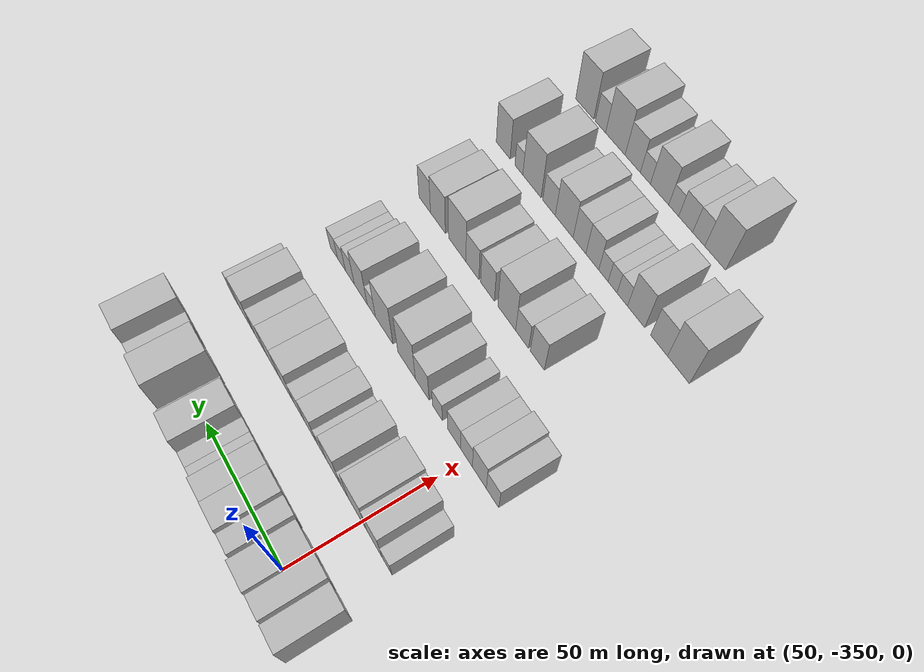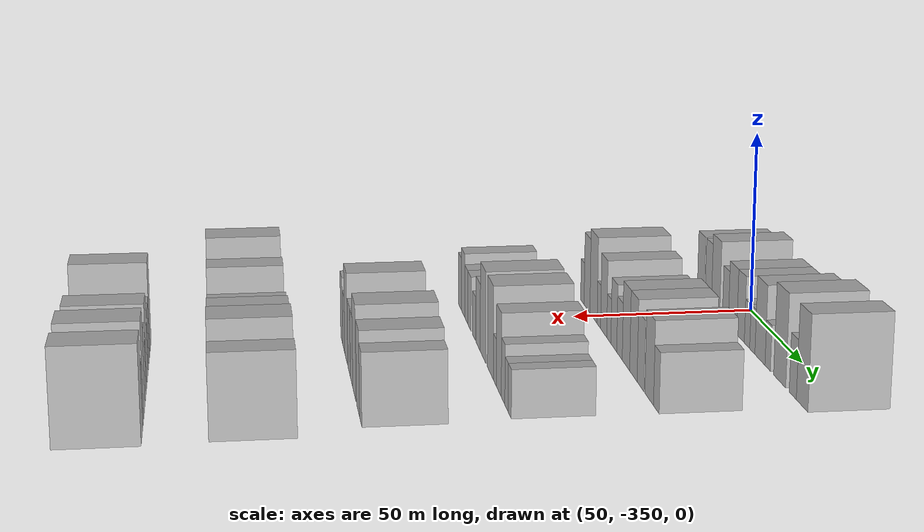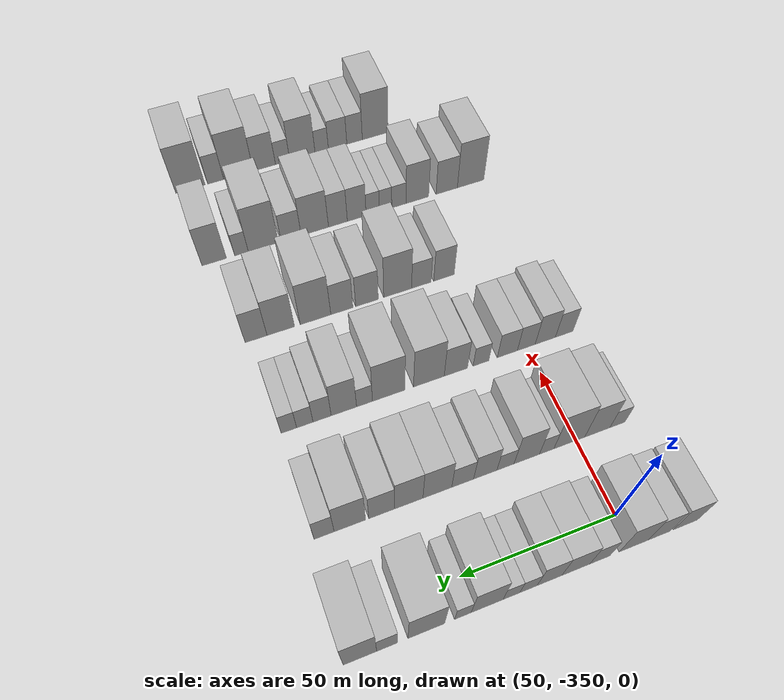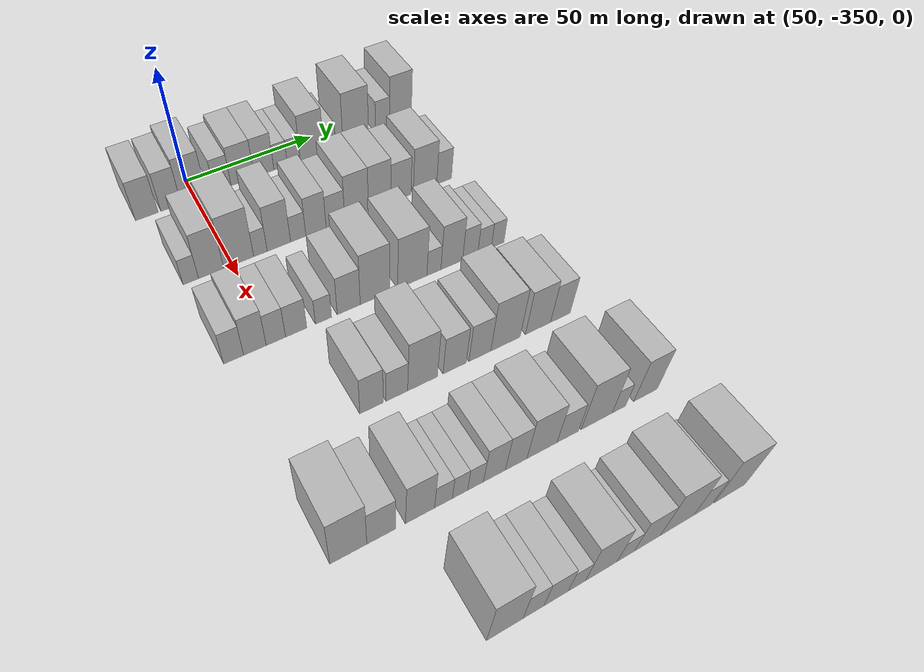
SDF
<sdf version="1.6">
 <world name="default">
  <model name="building_25">
   <static>1</static>
   <pose>50.0000 -367.8274 0 0.000000 0.000000 0.000000</pose>
   <link name="link">
    <pose>0 0 9.00 0 0 0</pose>
    <collision name="collision"><geometry><box><size>20.0000 8.2068 18.0000</size></box></geometry></collision>
    <visual name="visual">
     <cast_shadows>0</cast_shadows>
     <geometry><box><size>20.0000 8.2068 18.0000</size></box></geometry>
     <material>
      <script>
       <uri>model://HANNAS_wall/materials/scripts</uri>
       <uri>model://HANNAS_wall/materials/textures</uri>
       <name>vrc/HANNAS_wall</name>
      </script>
     </material>
    </visual>
   </link>
  </model>
  <model name="building_26">
   <static>1</static>
   <pose>50.0000 -358.9862 0 0.000000 0.000000 0.000000</pose>
   <link name="link">
    <pose>0 0 9.00 0 0 0</pose>
    <collision name="collision"><geometry><box><size>20.0000 7.4757 18.0000</size></box></geometry></collision>
    <visual name="visual">
     <cast_shadows>0</cast_shadows>
     <geometry><box><size>20.0000 7.4757 18.0000</size></box></geometry>
     <material>
      <script>
       <uri>model://HANNAS_wall/materials/scripts</uri>
       <uri>model://HANNAS_wall/materials/textures</uri>
       <name>vrc/HANNAS_wall</name>
      </script>
     </material>
    </visual>
   </link>
  </model>
  <model name="building_27">
   <static>1</static>
   <pose>50.0000 -350.5286 0 0.000000 0.000000 0.000000</pose>
   <link name="link">
    <pose>0 0 10.50 0 0 0</pose>
    <collision name="collision"><geometry><box><size>20.0000 9.4395 21.0000</size></box></geometry></collision>
    <visual name="visual">
     <cast_shadows>0</cast_shadows>
     <geometry><box><size>20.0000 9.4395 21.0000</size></box></geometry>
     <material>
      <script>
       <uri>model://HANNAS_wall/materials/scripts</uri>
       <uri>model://HANNAS_wall/materials/textures</uri>
       <name>vrc/HANNAS_wall</name>
      </script>
     </material>
    </visual>
   </link>
  </model>
  <model name="building_28">
   <static>1</static>
   <pose>50.0000 -339.5602 0 0.000000 0.000000 0.000000</pose>
   <link name="link">
    <pose>0 0 7.50 0 0 0</pose>
    <collision name="collision"><geometry><box><size>20.0000 6.4973 15.0000</size></box></geometry></collision>
    <visual name="visual">
     <cast_shadows>0</cast_shadows>
     <geometry><box><size>20.0000 6.4973 15.0000</size></box></geometry>
     <material>
      <script>
       <uri>model://HANNAS_wall/materials/scripts</uri>
       <uri>model://HANNAS_wall/materials/textures</uri>
       <name>vrc/HANNAS_wall</name>
      </script>
     </material>
    </visual>
   </link>
  </model>
  <model name="building_29">
   <static>1</static>
   <pose>50.0000 -331.8136 0 0.000000 0.000000 0.000000</pose>
   <link name="link">
    <pose>0 0 9.00 0 0 0</pose>
    <collision name="collision"><geometry><box><size>20.0000 8.9958 18.0000</size></box></geometry></collision>
    <visual name="visual">
     <cast_shadows>0</cast_shadows>
     <geometry><box><size>20.0000 8.9958 18.0000</size></box></geometry>
     <material>
      <script>
       <uri>model://HANNAS_wall/materials/scripts</uri>
       <uri>model://HANNAS_wall/materials/textures</uri>
       <name>vrc/HANNAS_wall</name>
      </script>
     </material>
    </visual>
   </link>
  </model>
  <model name="building_30">
   <static>1</static>
   <pose>50.0000 -323.3999 0 0.000000 0.000000 0.000000</pose>
   <link name="link">
    <pose>0 0 9.00 0 0 0</pose>
    <collision name="collision"><geometry><box><size>20.0000 7.8316 18.0000</size></box></geometry></collision>
    <visual name="visual">
     <cast_shadows>0</cast_shadows>
     <geometry><box><size>20.0000 7.8316 18.0000</size></box></geometry>
     <material>
      <script>
       <uri>model://HANNAS_wall/materials/scripts</uri>
       <uri>model://HANNAS_wall/materials/textures</uri>
       <name>vrc/HANNAS_wall</name>
      </script>
     </material>
    </visual>
   </link>
  </model>
  <model name="building_31">
   <static>1</static>
   <pose>50.0000 -316.7963 0 0.000000 0.000000 0.000000</pose>
   <link name="link">
    <pose>0 0 6.00 0 0 0</pose>
    <collision name="collision"><geometry><box><size>20.0000 5.3756 12.0000</size></box></geometry></collision>
    <visual name="visual">
     <cast_shadows>0</cast_shadows>
     <geometry><box><size>20.0000 5.3756 12.0000</size></box></geometry>
     <material>
      <script>
       <uri>model://HANNAS_wall/materials/scripts</uri>
       <uri>model://HANNAS_wall/materials/textures</uri>
       <name>vrc/HANNAS_wall</name>
      </script>
     </material>
    </visual>
   </link>
  </model>
  <model name="building_32">
   <static>1</static>
   <pose>50.0000 -311.5024 0 0.000000 0.000000 0.000000</pose>
   <link name="link">
    <pose>0 0 6.00 0 0 0</pose>
    <collision name="collision"><geometry><box><size>20.0000 5.2123 12.0000</size></box></geometry></collision>
    <visual name="visual">
     <cast_shadows>0</cast_shadows>
     <geometry><box><size>20.0000 5.2123 12.0000</size></box></geometry>
     <material>
      <script>
       <uri>model://HANNAS_wall/materials/scripts</uri>
       <uri>model://HANNAS_wall/materials/textures</uri>
       <name>vrc/HANNAS_wall</name>
      </script>
     </material>
    </visual>
   </link>
  </model>
  <model name="building_33">
   <static>1</static>
   <pose>50.0000 -304.0378 0 0.000000 0.000000 0.000000</pose>
   <link name="link">
    <pose>0 0 10.50 0 0 0</pose>
    <collision name="collision"><geometry><box><size>20.0000 9.7168 21.0000</size></box></geometry></collision>
    <visual name="visual">
     <cast_shadows>0</cast_shadows>
     <geometry><box><size>20.0000 9.7168 21.0000</size></box></geometry>
     <material>
      <script>
       <uri>model://HANNAS_wall/materials/scripts</uri>
       <uri>model://HANNAS_wall/materials/textures</uri>
       <name>vrc/HANNAS_wall</name>
      </script>
     </material>
    </visual>
   </link>
  </model>
  <model name="building_34">
   <static>1</static>
   <pose>50.0000 -296.6722 0 0.000000 0.000000 0.000000</pose>
   <link name="link">
    <pose>0 0 6.00 0 0 0</pose>
    <collision name="collision"><geometry><box><size>20.0000 5.0144 12.0000</size></box></geometry></collision>
    <visual name="visual">
     <cast_shadows>0</cast_shadows>
     <geometry><box><size>20.0000 5.0144 12.0000</size></box></geometry>
     <material>
      <script>
       <uri>model://HANNAS_wall/materials/scripts</uri>
       <uri>model://HANNAS_wall/materials/textures</uri>
       <name>vrc/HANNAS_wall</name>
      </script>
     </material>
    </visual>
   </link>
  </model>
  <model name="building_35">
   <static>1</static>
   <pose>50.0000 -285.7222 0 0.000000 0.000000 0.000000</pose>
   <link name="link">
    <pose>0 0 12.00 0 0 0</pose>
    <collision name="collision"><geometry><box><size>20.0000 10.8856 24.0000</size></box></geometry></collision>
    <visual name="visual">
     <cast_shadows>0</cast_shadows>
     <geometry><box><size>20.0000 10.8856 24.0000</size></box></geometry>
     <material>
      <script>
       <uri>model://HANNAS_wall/materials/scripts</uri>
       <uri>model://HANNAS_wall/materials/textures</uri>
       <name>vrc/HANNAS_wall</name>
      </script>
     </material>
    </visual>
   </link>
  </model>
  <model name="building_36">
   <static>1</static>
   <pose>50.0000 -274.2243 0 0.000000 0.000000 0.000000</pose>
   <link name="link">
    <pose>0 0 7.50 0 0 0</pose>
    <collision name="collision"><geometry><box><size>20.0000 6.1102 15.0000</size></box></geometry></collision>
    <visual name="visual">
     <cast_shadows>0</cast_shadows>
     <geometry><box><size>20.0000 6.1102 15.0000</size></box></geometry>
     <material>
      <script>
       <uri>model://HANNAS_wall/materials/scripts</uri>
       <uri>model://HANNAS_wall/materials/textures</uri>
       <name>vrc/HANNAS_wall</name>
      </script>
     </material>
    </visual>
   </link>
  </model>
  <model name="building_37">
   <static>1</static>
   <pose>50.0000 -266.3594 0 0.000000 0.000000 0.000000</pose>
   <link name="link">
    <pose>0 0 12.00 0 0 0</pose>
    <collision name="collision"><geometry><box><size>20.0000 9.6195 24.0000</size></box></geometry></collision>
    <visual name="visual">
     <cast_shadows>0</cast_shadows>
     <geometry><box><size>20.0000 9.6195 24.0000</size></box></geometry>
     <material>
      <script>
       <uri>model://HANNAS_wall/materials/scripts</uri>
       <uri>model://HANNAS_wall/materials/textures</uri>
       <name>vrc/HANNAS_wall</name>
      </script>
     </material>
    </visual>
   </link>
  </model>
  <model name="building_139">
   <static>1</static>
   <pose>85.0000 -364.5070 0 0.000000 0.000000 0.000000</pose>
   <link name="link">
    <pose>0 0 6.00 0 0 0</pose>
    <collision name="collision"><geometry><box><size>20.0000 5.3589 12.0000</size></box></geometry></collision>
    <visual name="visual">
     <cast_shadows>0</cast_shadows>
     <geometry><box><size>20.0000 5.3589 12.0000</size></box></geometry>
     <material>
      <script>
       <uri>model://HANNAS_wall/materials/scripts</uri>
       <uri>model://HANNAS_wall/materials/textures</uri>
       <name>vrc/HANNAS_wall</name>
      </script>
     </material>
    </visual>
   </link>
  </model>
  <model name="building_140">
   <static>1</static>
   <pose>85.0000 -357.4143 0 0.000000 0.000000 0.000000</pose>
   <link name="link">
    <pose>0 0 10.50 0 0 0</pose>
    <collision name="collision"><geometry><box><size>20.0000 8.8264 21.0000</size></box></geometry></collision>
    <visual name="visual">
     <cast_shadows>0</cast_shadows>
     <geometry><box><size>20.0000 8.8264 21.0000</size></box></geometry>
     <material>
      <script>
       <uri>model://HANNAS_wall/materials/scripts</uri>
       <uri>model://HANNAS_wall/materials/textures</uri>
       <name>vrc/HANNAS_wall</name>
      </script>
     </material>
    </visual>
   </link>
  </model>
  <model name="building_141">
   <static>1</static>
   <pose>85.0000 -347.6521 0 0.000000 0.000000 0.000000</pose>
   <link name="link">
    <pose>0 0 12.00 0 0 0</pose>
    <collision name="collision"><geometry><box><size>20.0000 10.6981 24.0000</size></box></geometry></collision>
    <visual name="visual">
     <cast_shadows>0</cast_shadows>
     <geometry><box><size>20.0000 10.6981 24.0000</size></box></geometry>
     <material>
      <script>
       <uri>model://HANNAS_wall/materials/scripts</uri>
       <uri>model://HANNAS_wall/materials/textures</uri>
       <name>vrc/HANNAS_wall</name>
      </script>
     </material>
    </visual>
   </link>
  </model>
  <model name="building_142">
   <static>1</static>
   <pose>85.0000 -339.8389 0 0.000000 0.000000 0.000000</pose>
   <link name="link">
    <pose>0 0 6.00 0 0 0</pose>
    <collision name="collision"><geometry><box><size>20.0000 4.9283 12.0000</size></box></geometry></collision>
    <visual name="visual">
     <cast_shadows>0</cast_shadows>
     <geometry><box><size>20.0000 4.9283 12.0000</size></box></geometry>
     <material>
      <script>
       <uri>model://HANNAS_wall/materials/scripts</uri>
       <uri>model://HANNAS_wall/materials/textures</uri>
       <name>vrc/HANNAS_wall</name>
      </script>
     </material>
    </visual>
   </link>
  </model>
  <model name="building_143">
   <static>1</static>
   <pose>85.0000 -333.0674 0 0.000000 0.000000 0.000000</pose>
   <link name="link">
    <pose>0 0 10.50 0 0 0</pose>
    <collision name="collision"><geometry><box><size>20.0000 8.6148 21.0000</size></box></geometry></collision>
    <visual name="visual">
     <cast_shadows>0</cast_shadows>
     <geometry><box><size>20.0000 8.6148 21.0000</size></box></geometry>
     <material>
      <script>
       <uri>model://HANNAS_wall/materials/scripts</uri>
       <uri>model://HANNAS_wall/materials/textures</uri>
       <name>vrc/HANNAS_wall</name>
      </script>
     </material>
    </visual>
   </link>
  </model>
  <model name="building_144">
   <static>1</static>
   <pose>85.0000 -325.8966 0 0.000000 0.000000 0.000000</pose>
   <link name="link">
    <pose>0 0 6.00 0 0 0</pose>
    <collision name="collision"><geometry><box><size>20.0000 5.7267 12.0000</size></box></geometry></collision>
    <visual name="visual">
     <cast_shadows>0</cast_shadows>
     <geometry><box><size>20.0000 5.7267 12.0000</size></box></geometry>
     <material>
      <script>
       <uri>model://HANNAS_wall/materials/scripts</uri>
       <uri>model://HANNAS_wall/materials/textures</uri>
       <name>vrc/HANNAS_wall</name>
      </script>
     </material>
    </visual>
   </link>
  </model>
  <model name="building_145">
   <static>1</static>
   <pose>85.0000 -319.1634 0 0.000000 0.000000 0.000000</pose>
   <link name="link">
    <pose>0 0 9.00 0 0 0</pose>
    <collision name="collision"><geometry><box><size>20.0000 7.7397 18.0000</size></box></geometry></collision>
    <visual name="visual">
     <cast_shadows>0</cast_shadows>
     <geometry><box><size>20.0000 7.7397 18.0000</size></box></geometry>
     <material>
      <script>
       <uri>model://HANNAS_wall/materials/scripts</uri>
       <uri>model://HANNAS_wall/materials/textures</uri>
       <name>vrc/HANNAS_wall</name>
      </script>
     </material>
    </visual>
   </link>
  </model>
  <model name="building_146">
   <static>1</static>
   <pose>85.0000 -311.7057 0 0.000000 0.000000 0.000000</pose>
   <link name="link">
    <pose>0 0 7.50 0 0 0</pose>
    <collision name="collision"><geometry><box><size>20.0000 7.1758 15.0000</size></box></geometry></collision>
    <visual name="visual">
     <cast_shadows>0</cast_shadows>
     <geometry><box><size>20.0000 7.1758 15.0000</size></box></geometry>
     <material>
      <script>
       <uri>model://HANNAS_wall/materials/scripts</uri>
       <uri>model://HANNAS_wall/materials/textures</uri>
       <name>vrc/HANNAS_wall</name>
      </script>
     </material>
    </visual>
   </link>
  </model>
  <model name="building_147">
   <static>1</static>
   <pose>85.0000 -303.4562 0 0.000000 0.000000 0.000000</pose>
   <link name="link">
    <pose>0 0 10.50 0 0 0</pose>
    <collision name="collision"><geometry><box><size>20.0000 9.3232 21.0000</size></box></geometry></collision>
    <visual name="visual">
     <cast_shadows>0</cast_shadows>
     <geometry><box><size>20.0000 9.3232 21.0000</size></box></geometry>
     <material>
      <script>
       <uri>model://HANNAS_wall/materials/scripts</uri>
       <uri>model://HANNAS_wall/materials/textures</uri>
       <name>vrc/HANNAS_wall</name>
      </script>
     </material>
    </visual>
   </link>
  </model>
  <model name="building_148">
   <static>1</static>
   <pose>85.0000 -294.2612 0 0.000000 0.000000 0.000000</pose>
   <link name="link">
    <pose>0 0 10.50 0 0 0</pose>
    <collision name="collision"><geometry><box><size>20.0000 9.0667 21.0000</size></box></geometry></collision>
    <visual name="visual">
     <cast_shadows>0</cast_shadows>
     <geometry><box><size>20.0000 9.0667 21.0000</size></box></geometry>
     <material>
      <script>
       <uri>model://HANNAS_wall/materials/scripts</uri>
       <uri>model://HANNAS_wall/materials/textures</uri>
       <name>vrc/HANNAS_wall</name>
      </script>
     </material>
    </visual>
   </link>
  </model>
  <model name="building_149">
   <static>1</static>
   <pose>85.0000 -285.6734 0 0.000000 0.000000 0.000000</pose>
   <link name="link">
    <pose>0 0 9.00 0 0 0</pose>
    <collision name="collision"><geometry><box><size>20.0000 8.1088 18.0000</size></box></geometry></collision>
    <visual name="visual">
     <cast_shadows>0</cast_shadows>
     <geometry><box><size>20.0000 8.1088 18.0000</size></box></geometry>
     <material>
      <script>
       <uri>model://HANNAS_wall/materials/scripts</uri>
       <uri>model://HANNAS_wall/materials/textures</uri>
       <name>vrc/HANNAS_wall</name>
      </script>
     </material>
    </visual>
   </link>
  </model>
  <model name="building_150">
   <static>1</static>
   <pose>85.0000 -275.7365 0 0.000000 0.000000 0.000000</pose>
   <link name="link">
    <pose>0 0 10.50 0 0 0</pose>
    <collision name="collision"><geometry><box><size>20.0000 9.7651 21.0000</size></box></geometry></collision>
    <visual name="visual">
     <cast_shadows>0</cast_shadows>
     <geometry><box><size>20.0000 9.7651 21.0000</size></box></geometry>
     <material>
      <script>
       <uri>model://HANNAS_wall/materials/scripts</uri>
       <uri>model://HANNAS_wall/materials/textures</uri>
       <name>vrc/HANNAS_wall</name>
      </script>
     </material>
    </visual>
   </link>
  </model>
  <model name="building_151">
   <static>1</static>
   <pose>85.0000 -267.7706 0 0.000000 0.000000 0.000000</pose>
   <link name="link">
    <pose>0 0 7.50 0 0 0</pose>
    <collision name="collision"><geometry><box><size>20.0000 6.1667 15.0000</size></box></geometry></collision>
    <visual name="visual">
     <cast_shadows>0</cast_shadows>
     <geometry><box><size>20.0000 6.1667 15.0000</size></box></geometry>
     <material>
      <script>
       <uri>model://HANNAS_wall/materials/scripts</uri>
       <uri>model://HANNAS_wall/materials/textures</uri>
       <name>vrc/HANNAS_wall</name>
      </script>
     </material>
    </visual>
   </link>
  </model>
  <model name="building_270">
   <static>1</static>
   <pose>120.0000 -363.6564 0 0.000000 0.000000 0.000000</pose>
   <link name="link">
    <pose>0 0 7.50 0 0 0</pose>
    <collision name="collision"><geometry><box><size>20.0000 6.5528 15.0000</size></box></geometry></collision>
    <visual name="visual">
     <cast_shadows>0</cast_shadows>
     <geometry><box><size>20.0000 6.5528 15.0000</size></box></geometry>
     <material>
      <script>
       <uri>model://HANNAS_wall/materials/scripts</uri>
       <uri>model://HANNAS_wall/materials/textures</uri>
       <name>vrc/HANNAS_wall</name>
      </script>
     </material>
    </visual>
   </link>
  </model>
  <model name="building_271">
   <static>1</static>
   <pose>120.0000 -356.6578 0 0.000000 0.000000 0.000000</pose>
   <link name="link">
    <pose>0 0 9.00 0 0 0</pose>
    <collision name="collision"><geometry><box><size>20.0000 7.4444 18.0000</size></box></geometry></collision>
    <visual name="visual">
     <cast_shadows>0</cast_shadows>
     <geometry><box><size>20.0000 7.4444 18.0000</size></box></geometry>
     <material>
      <script>
       <uri>model://HANNAS_wall/materials/scripts</uri>
       <uri>model://HANNAS_wall/materials/textures</uri>
       <name>vrc/HANNAS_wall</name>
      </script>
     </material>
    </visual>
   </link>
  </model>
  <model name="building_272">
   <static>1</static>
   <pose>120.0000 -349.6833 0 0.000000 0.000000 0.000000</pose>
   <link name="link">
    <pose>0 0 7.50 0 0 0</pose>
    <collision name="collision"><geometry><box><size>20.0000 6.5048 15.0000</size></box></geometry></collision>
    <visual name="visual">
     <cast_shadows>0</cast_shadows>
     <geometry><box><size>20.0000 6.5048 15.0000</size></box></geometry>
     <material>
      <script>
       <uri>model://HANNAS_wall/materials/scripts</uri>
       <uri>model://HANNAS_wall/materials/textures</uri>
       <name>vrc/HANNAS_wall</name>
      </script>
     </material>
    </visual>
   </link>
  </model>
  <model name="building_273">
   <static>1</static>
   <pose>120.0000 -342.7935 0 0.000000 0.000000 0.000000</pose>
   <link name="link">
    <pose>0 0 7.50 0 0 0</pose>
    <collision name="collision"><geometry><box><size>20.0000 7.2747 15.0000</size></box></geometry></collision>
    <visual name="visual">
     <cast_shadows>0</cast_shadows>
     <geometry><box><size>20.0000 7.2747 15.0000</size></box></geometry>
     <material>
      <script>
       <uri>model://HANNAS_wall/materials/scripts</uri>
       <uri>model://HANNAS_wall/materials/textures</uri>
       <name>vrc/HANNAS_wall</name>
      </script>
     </material>
    </visual>
   </link>
  </model>
  <model name="building_274">
   <static>1</static>
   <pose>120.0000 -333.3341 0 0.000000 0.000000 0.000000</pose>
   <link name="link">
    <pose>0 0 6.00 0 0 0</pose>
    <collision name="collision"><geometry><box><size>20.0000 5.6441 12.0000</size></box></geometry></collision>
    <visual name="visual">
     <cast_shadows>0</cast_shadows>
     <geometry><box><size>20.0000 5.6441 12.0000</size></box></geometry>
     <material>
      <script>
       <uri>model://HANNAS_wall/materials/scripts</uri>
       <uri>model://HANNAS_wall/materials/textures</uri>
       <name>vrc/HANNAS_wall</name>
      </script>
     </material>
    </visual>
   </link>
  </model>
  <model name="building_275">
   <static>1</static>
   <pose>120.0000 -324.4067 0 0.000000 0.000000 0.000000</pose>
   <link name="link">
    <pose>0 0 9.00 0 0 0</pose>
    <collision name="collision"><geometry><box><size>20.0000 8.2107 18.0000</size></box></geometry></collision>
    <visual name="visual">
     <cast_shadows>0</cast_shadows>
     <geometry><box><size>20.0000 8.2107 18.0000</size></box></geometry>
     <material>
      <script>
       <uri>model://HANNAS_wall/materials/scripts</uri>
       <uri>model://HANNAS_wall/materials/textures</uri>
       <name>vrc/HANNAS_wall</name>
      </script>
     </material>
    </visual>
   </link>
  </model>
  <model name="building_276">
   <static>1</static>
   <pose>120.0000 -314.9509 0 0.000000 0.000000 0.000000</pose>
   <link name="link">
    <pose>0 0 12.00 0 0 0</pose>
    <collision name="collision"><geometry><box><size>20.0000 10.7009 24.0000</size></box></geometry></collision>
    <visual name="visual">
     <cast_shadows>0</cast_shadows>
     <geometry><box><size>20.0000 10.7009 24.0000</size></box></geometry>
     <material>
      <script>
       <uri>model://HANNAS_wall/materials/scripts</uri>
       <uri>model://HANNAS_wall/materials/textures</uri>
       <name>vrc/HANNAS_wall</name>
      </script>
     </material>
    </visual>
   </link>
  </model>
  <model name="building_277">
   <static>1</static>
   <pose>120.0000 -301.0868 0 0.000000 0.000000 0.000000</pose>
   <link name="link">
    <pose>0 0 12.00 0 0 0</pose>
    <collision name="collision"><geometry><box><size>20.0000 11.0273 24.0000</size></box></geometry></collision>
    <visual name="visual">
     <cast_shadows>0</cast_shadows>
     <geometry><box><size>20.0000 11.0273 24.0000</size></box></geometry>
     <material>
      <script>
       <uri>model://HANNAS_wall/materials/scripts</uri>
       <uri>model://HANNAS_wall/materials/textures</uri>
       <name>vrc/HANNAS_wall</name>
      </script>
     </material>
    </visual>
   </link>
  </model>
  <model name="building_278">
   <static>1</static>
   <pose>120.0000 -292.8948 0 0.000000 0.000000 0.000000</pose>
   <link name="link">
    <pose>0 0 6.00 0 0 0</pose>
    <collision name="collision"><geometry><box><size>20.0000 5.3566 12.0000</size></box></geometry></collision>
    <visual name="visual">
     <cast_shadows>0</cast_shadows>
     <geometry><box><size>20.0000 5.3566 12.0000</size></box></geometry>
     <material>
      <script>
       <uri>model://HANNAS_wall/materials/scripts</uri>
       <uri>model://HANNAS_wall/materials/textures</uri>
       <name>vrc/HANNAS_wall</name>
      </script>
     </material>
    </visual>
   </link>
  </model>
  <model name="building_279">
   <static>1</static>
   <pose>120.0000 -285.9849 0 0.000000 0.000000 0.000000</pose>
   <link name="link">
    <pose>0 0 10.50 0 0 0</pose>
    <collision name="collision"><geometry><box><size>20.0000 8.4633 21.0000</size></box></geometry></collision>
    <visual name="visual">
     <cast_shadows>0</cast_shadows>
     <geometry><box><size>20.0000 8.4633 21.0000</size></box></geometry>
     <material>
      <script>
       <uri>model://HANNAS_wall/materials/scripts</uri>
       <uri>model://HANNAS_wall/materials/textures</uri>
       <name>vrc/HANNAS_wall</name>
      </script>
     </material>
    </visual>
   </link>
  </model>
  <model name="building_280">
   <static>1</static>
   <pose>120.0000 -278.7470 0 0.000000 0.000000 0.000000</pose>
   <link name="link">
    <pose>0 0 7.50 0 0 0</pose>
    <collision name="collision"><geometry><box><size>20.0000 6.0126 15.0000</size></box></geometry></collision>
    <visual name="visual">
     <cast_shadows>0</cast_shadows>
     <geometry><box><size>20.0000 6.0126 15.0000</size></box></geometry>
     <material>
      <script>
       <uri>model://HANNAS_wall/materials/scripts</uri>
       <uri>model://HANNAS_wall/materials/textures</uri>
       <name>vrc/HANNAS_wall</name>
      </script>
     </material>
    </visual>
   </link>
  </model>
  <model name="building_281">
   <static>1</static>
   <pose>120.0000 -273.0444 0 0.000000 0.000000 0.000000</pose>
   <link name="link">
    <pose>0 0 6.00 0 0 0</pose>
    <collision name="collision"><geometry><box><size>20.0000 5.3925 12.0000</size></box></geometry></collision>
    <visual name="visual">
     <cast_shadows>0</cast_shadows>
     <geometry><box><size>20.0000 5.3925 12.0000</size></box></geometry>
     <material>
      <script>
       <uri>model://HANNAS_wall/materials/scripts</uri>
       <uri>model://HANNAS_wall/materials/textures</uri>
       <name>vrc/HANNAS_wall</name>
      </script>
     </material>
    </visual>
   </link>
  </model>
  <model name="building_282">
   <static>1</static>
   <pose>120.0000 -267.8078 0 0.000000 0.000000 0.000000</pose>
   <link name="link">
    <pose>0 0 6.00 0 0 0</pose>
    <collision name="collision"><geometry><box><size>20.0000 5.0807 12.0000</size></box></geometry></collision>
    <visual name="visual">
     <cast_shadows>0</cast_shadows>
     <geometry><box><size>20.0000 5.0807 12.0000</size></box></geometry>
     <material>
      <script>
       <uri>model://HANNAS_wall/materials/scripts</uri>
       <uri>model://HANNAS_wall/materials/textures</uri>
       <name>vrc/HANNAS_wall</name>
      </script>
     </material>
    </visual>
   </link>
  </model>
  <model name="building_406">
   <static>1</static>
   <pose>155.0000 -334.8385 0 0.000000 0.000000 0.000000</pose>
   <link name="link">
    <pose>0 0 9.00 0 0 0</pose>
    <collision name="collision"><geometry><box><size>20.0000 7.6685 18.0000</size></box></geometry></collision>
    <visual name="visual">
     <cast_shadows>0</cast_shadows>
     <geometry><box><size>20.0000 7.6685 18.0000</size></box></geometry>
     <material>
      <script>
       <uri>model://HANNAS_wall/materials/scripts</uri>
       <uri>model://HANNAS_wall/materials/textures</uri>
       <name>vrc/HANNAS_wall</name>
      </script>
     </material>
    </visual>
   </link>
  </model>
  <model name="building_407">
   <static>1</static>
   <pose>155.0000 -326.3817 0 0.000000 0.000000 0.000000</pose>
   <link name="link">
    <pose>0 0 7.50 0 0 0</pose>
    <collision name="collision"><geometry><box><size>20.0000 7.2451 15.0000</size></box></geometry></collision>
    <visual name="visual">
     <cast_shadows>0</cast_shadows>
     <geometry><box><size>20.0000 7.2451 15.0000</size></box></geometry>
     <material>
      <script>
       <uri>model://HANNAS_wall/materials/scripts</uri>
       <uri>model://HANNAS_wall/materials/textures</uri>
       <name>vrc/HANNAS_wall</name>
      </script>
     </material>
    </visual>
   </link>
  </model>
  <model name="building_408">
   <static>1</static>
   <pose>155.0000 -317.6310 0 0.000000 0.000000 0.000000</pose>
   <link name="link">
    <pose>0 0 12.00 0 0 0</pose>
    <collision name="collision"><geometry><box><size>20.0000 10.2562 24.0000</size></box></geometry></collision>
    <visual name="visual">
     <cast_shadows>0</cast_shadows>
     <geometry><box><size>20.0000 10.2562 24.0000</size></box></geometry>
     <material>
      <script>
       <uri>model://HANNAS_wall/materials/scripts</uri>
       <uri>model://HANNAS_wall/materials/textures</uri>
       <name>vrc/HANNAS_wall</name>
      </script>
     </material>
    </visual>
   </link>
  </model>
  <model name="building_409">
   <static>1</static>
   <pose>155.0000 -306.4169 0 0.000000 0.000000 0.000000</pose>
   <link name="link">
    <pose>0 0 9.00 0 0 0</pose>
    <collision name="collision"><geometry><box><size>20.0000 8.1720 18.0000</size></box></geometry></collision>
    <visual name="visual">
     <cast_shadows>0</cast_shadows>
     <geometry><box><size>20.0000 8.1720 18.0000</size></box></geometry>
     <material>
      <script>
       <uri>model://HANNAS_wall/materials/scripts</uri>
       <uri>model://HANNAS_wall/materials/textures</uri>
       <name>vrc/HANNAS_wall</name>
      </script>
     </material>
    </visual>
   </link>
  </model>
  <model name="building_410">
   <static>1</static>
   <pose>155.0000 -297.3778 0 0.000000 0.000000 0.000000</pose>
   <link name="link">
    <pose>0 0 9.00 0 0 0</pose>
    <collision name="collision"><geometry><box><size>20.0000 7.9062 18.0000</size></box></geometry></collision>
    <visual name="visual">
     <cast_shadows>0</cast_shadows>
     <geometry><box><size>20.0000 7.9062 18.0000</size></box></geometry>
     <material>
      <script>
       <uri>model://HANNAS_wall/materials/scripts</uri>
       <uri>model://HANNAS_wall/materials/textures</uri>
       <name>vrc/HANNAS_wall</name>
      </script>
     </material>
    </visual>
   </link>
  </model>
  <model name="building_411">
   <static>1</static>
   <pose>155.0000 -288.0062 0 0.000000 0.000000 0.000000</pose>
   <link name="link">
    <pose>0 0 12.00 0 0 0</pose>
    <collision name="collision"><geometry><box><size>20.0000 10.8371 24.0000</size></box></geometry></collision>
    <visual name="visual">
     <cast_shadows>0</cast_shadows>
     <geometry><box><size>20.0000 10.8371 24.0000</size></box></geometry>
     <material>
      <script>
       <uri>model://HANNAS_wall/materials/scripts</uri>
       <uri>model://HANNAS_wall/materials/textures</uri>
       <name>vrc/HANNAS_wall</name>
      </script>
     </material>
    </visual>
   </link>
  </model>
  <model name="building_412">
   <static>1</static>
   <pose>155.0000 -275.7960 0 0.000000 0.000000 0.000000</pose>
   <link name="link">
    <pose>0 0 10.50 0 0 0</pose>
    <collision name="collision"><geometry><box><size>20.0000 9.5833 21.0000</size></box></geometry></collision>
    <visual name="visual">
     <cast_shadows>0</cast_shadows>
     <geometry><box><size>20.0000 9.5833 21.0000</size></box></geometry>
     <material>
      <script>
       <uri>model://HANNAS_wall/materials/scripts</uri>
       <uri>model://HANNAS_wall/materials/textures</uri>
       <name>vrc/HANNAS_wall</name>
      </script>
     </material>
    </visual>
   </link>
  </model>
  <model name="building_413">
   <static>1</static>
   <pose>155.0000 -267.2233 0 0.000000 0.000000 0.000000</pose>
   <link name="link">
    <pose>0 0 9.00 0 0 0</pose>
    <collision name="collision"><geometry><box><size>20.0000 7.5622 18.0000</size></box></geometry></collision>
    <visual name="visual">
     <cast_shadows>0</cast_shadows>
     <geometry><box><size>20.0000 7.5622 18.0000</size></box></geometry>
     <material>
      <script>
       <uri>model://HANNAS_wall/materials/scripts</uri>
       <uri>model://HANNAS_wall/materials/textures</uri>
       <name>vrc/HANNAS_wall</name>
      </script>
     </material>
    </visual>
   </link>
  </model>
  <model name="building_534">
   <static>1</static>
   <pose>190.0000 -360.2196 0 0.000000 0.000000 0.000000</pose>
   <link name="link">
    <pose>0 0 12.00 0 0 0</pose>
    <collision name="collision"><geometry><box><size>20.0000 10.7428 24.0000</size></box></geometry></collision>
    <visual name="visual">
     <cast_shadows>0</cast_shadows>
     <geometry><box><size>20.0000 10.7428 24.0000</size></box></geometry>
     <material>
      <script>
       <uri>model://HANNAS_wall/materials/scripts</uri>
       <uri>model://HANNAS_wall/materials/textures</uri>
       <name>vrc/HANNAS_wall</name>
      </script>
     </material>
    </visual>
   </link>
  </model>
  <model name="building_535">
   <static>1</static>
   <pose>190.0000 -350.5752 0 0.000000 0.000000 0.000000</pose>
   <link name="link">
    <pose>0 0 9.00 0 0 0</pose>
    <collision name="collision"><geometry><box><size>20.0000 8.5459 18.0000</size></box></geometry></collision>
    <visual name="visual">
     <cast_shadows>0</cast_shadows>
     <geometry><box><size>20.0000 8.5459 18.0000</size></box></geometry>
     <material>
      <script>
       <uri>model://HANNAS_wall/materials/scripts</uri>
       <uri>model://HANNAS_wall/materials/textures</uri>
       <name>vrc/HANNAS_wall</name>
      </script>
     </material>
    </visual>
   </link>
  </model>
  <model name="building_536">
   <static>1</static>
   <pose>190.0000 -338.8067 0 0.000000 0.000000 0.000000</pose>
   <link name="link">
    <pose>0 0 10.50 0 0 0</pose>
    <collision name="collision"><geometry><box><size>20.0000 8.9912 21.0000</size></box></geometry></collision>
    <visual name="visual">
     <cast_shadows>0</cast_shadows>
     <geometry><box><size>20.0000 8.9912 21.0000</size></box></geometry>
     <material>
      <script>
       <uri>model://HANNAS_wall/materials/scripts</uri>
       <uri>model://HANNAS_wall/materials/textures</uri>
       <name>vrc/HANNAS_wall</name>
      </script>
     </material>
    </visual>
   </link>
  </model>
  <model name="building_537">
   <static>1</static>
   <pose>190.0000 -331.5196 0 0.000000 0.000000 0.000000</pose>
   <link name="link">
    <pose>0 0 6.00 0 0 0</pose>
    <collision name="collision"><geometry><box><size>20.0000 5.5829 12.0000</size></box></geometry></collision>
    <visual name="visual">
     <cast_shadows>0</cast_shadows>
     <geometry><box><size>20.0000 5.5829 12.0000</size></box></geometry>
     <material>
      <script>
       <uri>model://HANNAS_wall/materials/scripts</uri>
       <uri>model://HANNAS_wall/materials/textures</uri>
       <name>vrc/HANNAS_wall</name>
      </script>
     </material>
    </visual>
   </link>
  </model>
  <model name="building_538">
   <static>1</static>
   <pose>190.0000 -326.3060 0 0.000000 0.000000 0.000000</pose>
   <link name="link">
    <pose>0 0 6.00 0 0 0</pose>
    <collision name="collision"><geometry><box><size>20.0000 4.8444 12.0000</size></box></geometry></collision>
    <visual name="visual">
     <cast_shadows>0</cast_shadows>
     <geometry><box><size>20.0000 4.8444 12.0000</size></box></geometry>
     <material>
      <script>
       <uri>model://HANNAS_wall/materials/scripts</uri>
       <uri>model://HANNAS_wall/materials/textures</uri>
       <name>vrc/HANNAS_wall</name>
      </script>
     </material>
    </visual>
   </link>
  </model>
  <model name="building_539">
   <static>1</static>
   <pose>190.0000 -321.3244 0 0.000000 0.000000 0.000000</pose>
   <link name="link">
    <pose>0 0 6.00 0 0 0</pose>
    <collision name="collision"><geometry><box><size>20.0000 5.1188 12.0000</size></box></geometry></collision>
    <visual name="visual">
     <cast_shadows>0</cast_shadows>
     <geometry><box><size>20.0000 5.1188 12.0000</size></box></geometry>
     <material>
      <script>
       <uri>model://HANNAS_wall/materials/scripts</uri>
       <uri>model://HANNAS_wall/materials/textures</uri>
       <name>vrc/HANNAS_wall</name>
      </script>
     </material>
    </visual>
   </link>
  </model>
  <model name="building_540">
   <static>1</static>
   <pose>190.0000 -315.1570 0 0.000000 0.000000 0.000000</pose>
   <link name="link">
    <pose>0 0 9.00 0 0 0</pose>
    <collision name="collision"><geometry><box><size>20.0000 7.2160 18.0000</size></box></geometry></collision>
    <visual name="visual">
     <cast_shadows>0</cast_shadows>
     <geometry><box><size>20.0000 7.2160 18.0000</size></box></geometry>
     <material>
      <script>
       <uri>model://HANNAS_wall/materials/scripts</uri>
       <uri>model://HANNAS_wall/materials/textures</uri>
       <name>vrc/HANNAS_wall</name>
      </script>
     </material>
    </visual>
   </link>
  </model>
  <model name="building_541">
   <static>1</static>
   <pose>190.0000 -307.9442 0 0.000000 0.000000 0.000000</pose>
   <link name="link">
    <pose>0 0 9.00 0 0 0</pose>
    <collision name="collision"><geometry><box><size>20.0000 7.2097 18.0000</size></box></geometry></collision>
    <visual name="visual">
     <cast_shadows>0</cast_shadows>
     <geometry><box><size>20.0000 7.2097 18.0000</size></box></geometry>
     <material>
      <script>
       <uri>model://HANNAS_wall/materials/scripts</uri>
       <uri>model://HANNAS_wall/materials/textures</uri>
       <name>vrc/HANNAS_wall</name>
      </script>
     </material>
    </visual>
   </link>
  </model>
  <model name="building_542">
   <static>1</static>
   <pose>190.0000 -299.1655 0 0.000000 0.000000 0.000000</pose>
   <link name="link">
    <pose>0 0 10.50 0 0 0</pose>
    <collision name="collision"><geometry><box><size>20.0000 10.3477 21.0000</size></box></geometry></collision>
    <visual name="visual">
     <cast_shadows>0</cast_shadows>
     <geometry><box><size>20.0000 10.3477 21.0000</size></box></geometry>
     <material>
      <script>
       <uri>model://HANNAS_wall/materials/scripts</uri>
       <uri>model://HANNAS_wall/materials/textures</uri>
       <name>vrc/HANNAS_wall</name>
      </script>
     </material>
    </visual>
   </link>
  </model>
  <model name="building_543">
   <static>1</static>
   <pose>190.0000 -290.2594 0 0.000000 0.000000 0.000000</pose>
   <link name="link">
    <pose>0 0 7.50 0 0 0</pose>
    <collision name="collision"><geometry><box><size>20.0000 7.4645 15.0000</size></box></geometry></collision>
    <visual name="visual">
     <cast_shadows>0</cast_shadows>
     <geometry><box><size>20.0000 7.4645 15.0000</size></box></geometry>
     <material>
      <script>
       <uri>model://HANNAS_wall/materials/scripts</uri>
       <uri>model://HANNAS_wall/materials/textures</uri>
       <name>vrc/HANNAS_wall</name>
      </script>
     </material>
    </visual>
   </link>
  </model>
  <model name="building_544">
   <static>1</static>
   <pose>190.0000 -279.9548 0 0.000000 0.000000 0.000000</pose>
   <link name="link">
    <pose>0 0 12.00 0 0 0</pose>
    <collision name="collision"><geometry><box><size>20.0000 11.1448 24.0000</size></box></geometry></collision>
    <visual name="visual">
     <cast_shadows>0</cast_shadows>
     <geometry><box><size>20.0000 11.1448 24.0000</size></box></geometry>
     <material>
      <script>
       <uri>model://HANNAS_wall/materials/scripts</uri>
       <uri>model://HANNAS_wall/materials/textures</uri>
       <name>vrc/HANNAS_wall</name>
      </script>
     </material>
    </visual>
   </link>
  </model>
  <model name="building_545">
   <static>1</static>
   <pose>190.0000 -271.9072 0 0.000000 0.000000 0.000000</pose>
   <link name="link">
    <pose>0 0 6.00 0 0 0</pose>
    <collision name="collision"><geometry><box><size>20.0000 4.9503 12.0000</size></box></geometry></collision>
    <visual name="visual">
     <cast_shadows>0</cast_shadows>
     <geometry><box><size>20.0000 4.9503 12.0000</size></box></geometry>
     <material>
      <script>
       <uri>model://HANNAS_wall/materials/scripts</uri>
       <uri>model://HANNAS_wall/materials/textures</uri>
       <name>vrc/HANNAS_wall</name>
      </script>
     </material>
    </visual>
   </link>
  </model>
  <model name="building_546">
   <static>1</static>
   <pose>190.0000 -262.0146 0 0.000000 0.000000 0.000000</pose>
   <link name="link">
    <pose>0 0 10.50 0 0 0</pose>
    <collision name="collision"><geometry><box><size>20.0000 8.8348 21.0000</size></box></geometry></collision>
    <visual name="visual">
     <cast_shadows>0</cast_shadows>
     <geometry><box><size>20.0000 8.8348 21.0000</size></box></geometry>
     <material>
      <script>
       <uri>model://HANNAS_wall/materials/scripts</uri>
       <uri>model://HANNAS_wall/materials/textures</uri>
       <name>vrc/HANNAS_wall</name>
      </script>
     </material>
    </visual>
   </link>
  </model>
  <model name="building_663">
   <static>1</static>
   <pose>225.0000 -335.1805 0 0.000000 0.000000 0.000000</pose>
   <link name="link">
    <pose>0 0 12.00 0 0 0</pose>
    <collision name="collision"><geometry><box><size>20.0000 10.6431 24.0000</size></box></geometry></collision>
    <visual name="visual">
     <cast_shadows>0</cast_shadows>
     <geometry><box><size>20.0000 10.6431 24.0000</size></box></geometry>
     <material>
      <script>
       <uri>model://HANNAS_wall/materials/scripts</uri>
       <uri>model://HANNAS_wall/materials/textures</uri>
       <name>vrc/HANNAS_wall</name>
      </script>
     </material>
    </visual>
   </link>
  </model>
  <model name="building_664">
   <static>1</static>
   <pose>225.0000 -326.6888 0 0.000000 0.000000 0.000000</pose>
   <link name="link">
    <pose>0 0 7.50 0 0 0</pose>
    <collision name="collision"><geometry><box><size>20.0000 6.3402 15.0000</size></box></geometry></collision>
    <visual name="visual">
     <cast_shadows>0</cast_shadows>
     <geometry><box><size>20.0000 6.3402 15.0000</size></box></geometry>
     <material>
      <script>
       <uri>model://HANNAS_wall/materials/scripts</uri>
       <uri>model://HANNAS_wall/materials/textures</uri>
       <name>vrc/HANNAS_wall</name>
      </script>
     </material>
    </visual>
   </link>
  </model>
  <model name="building_665">
   <static>1</static>
   <pose>225.0000 -319.7886 0 0.000000 0.000000 0.000000</pose>
   <link name="link">
    <pose>0 0 7.50 0 0 0</pose>
    <collision name="collision"><geometry><box><size>20.0000 7.4603 15.0000</size></box></geometry></collision>
    <visual name="visual">
     <cast_shadows>0</cast_shadows>
     <geometry><box><size>20.0000 7.4603 15.0000</size></box></geometry>
     <material>
      <script>
       <uri>model://HANNAS_wall/materials/scripts</uri>
       <uri>model://HANNAS_wall/materials/textures</uri>
       <name>vrc/HANNAS_wall</name>
      </script>
     </material>
    </visual>
   </link>
  </model>
  <model name="building_666">
   <static>1</static>
   <pose>225.0000 -313.3671 0 0.000000 0.000000 0.000000</pose>
   <link name="link">
    <pose>0 0 6.00 0 0 0</pose>
    <collision name="collision"><geometry><box><size>20.0000 5.3827 12.0000</size></box></geometry></collision>
    <visual name="visual">
     <cast_shadows>0</cast_shadows>
     <geometry><box><size>20.0000 5.3827 12.0000</size></box></geometry>
     <material>
      <script>
       <uri>model://HANNAS_wall/materials/scripts</uri>
       <uri>model://HANNAS_wall/materials/textures</uri>
       <name>vrc/HANNAS_wall</name>
      </script>
     </material>
    </visual>
   </link>
  </model>
  <model name="building_667">
   <static>1</static>
   <pose>225.0000 -305.6206 0 0.000000 0.000000 0.000000</pose>
   <link name="link">
    <pose>0 0 10.50 0 0 0</pose>
    <collision name="collision"><geometry><box><size>20.0000 10.1102 21.0000</size></box></geometry></collision>
    <visual name="visual">
     <cast_shadows>0</cast_shadows>
     <geometry><box><size>20.0000 10.1102 21.0000</size></box></geometry>
     <material>
      <script>
       <uri>model://HANNAS_wall/materials/scripts</uri>
       <uri>model://HANNAS_wall/materials/textures</uri>
       <name>vrc/HANNAS_wall</name>
      </script>
     </material>
    </visual>
   </link>
  </model>
  <model name="building_668">
   <static>1</static>
   <pose>225.0000 -297.7366 0 0.000000 0.000000 0.000000</pose>
   <link name="link">
    <pose>0 0 6.00 0 0 0</pose>
    <collision name="collision"><geometry><box><size>20.0000 5.6578 12.0000</size></box></geometry></collision>
    <visual name="visual">
     <cast_shadows>0</cast_shadows>
     <geometry><box><size>20.0000 5.6578 12.0000</size></box></geometry>
     <material>
      <script>
       <uri>model://HANNAS_wall/materials/scripts</uri>
       <uri>model://HANNAS_wall/materials/textures</uri>
       <name>vrc/HANNAS_wall</name>
      </script>
     </material>
    </visual>
   </link>
  </model>
  <model name="building_669">
   <static>1</static>
   <pose>225.0000 -290.5399 0 0.000000 0.000000 0.000000</pose>
   <link name="link">
    <pose>0 0 9.00 0 0 0</pose>
    <collision name="collision"><geometry><box><size>20.0000 8.7357 18.0000</size></box></geometry></collision>
    <visual name="visual">
     <cast_shadows>0</cast_shadows>
     <geometry><box><size>20.0000 8.7357 18.0000</size></box></geometry>
     <material>
      <script>
       <uri>model://HANNAS_wall/materials/scripts</uri>
       <uri>model://HANNAS_wall/materials/textures</uri>
       <name>vrc/HANNAS_wall</name>
      </script>
     </material>
    </visual>
   </link>
  </model>
  <model name="building_670">
   <static>1</static>
   <pose>225.0000 -280.4311 0 0.000000 0.000000 0.000000</pose>
   <link name="link">
    <pose>0 0 12.00 0 0 0</pose>
    <collision name="collision"><geometry><box><size>20.0000 11.4820 24.0000</size></box></geometry></collision>
    <visual name="visual">
     <cast_shadows>0</cast_shadows>
     <geometry><box><size>20.0000 11.4820 24.0000</size></box></geometry>
     <material>
      <script>
       <uri>model://HANNAS_wall/materials/scripts</uri>
       <uri>model://HANNAS_wall/materials/textures</uri>
       <name>vrc/HANNAS_wall</name>
      </script>
     </material>
    </visual>
   </link>
  </model>
  <model name="building_671">
   <static>1</static>
   <pose>225.0000 -271.6061 0 0.000000 0.000000 0.000000</pose>
   <link name="link">
    <pose>0 0 7.50 0 0 0</pose>
    <collision name="collision"><geometry><box><size>20.0000 6.1679 15.0000</size></box></geometry></collision>
    <visual name="visual">
     <cast_shadows>0</cast_shadows>
     <geometry><box><size>20.0000 6.1679 15.0000</size></box></geometry>
     <material>
      <script>
       <uri>model://HANNAS_wall/materials/scripts</uri>
       <uri>model://HANNAS_wall/materials/textures</uri>
       <name>vrc/HANNAS_wall</name>
      </script>
     </material>
    </visual>
   </link>
  </model>
  <model name="building_672">
   <static>1</static>
   <pose>225.0000 -261.9711 0 0.000000 0.000000 0.000000</pose>
   <link name="link">
    <pose>0 0 12.00 0 0 0</pose>
    <collision name="collision"><geometry><box><size>20.0000 11.1021 24.0000</size></box></geometry></collision>
    <visual name="visual">
     <cast_shadows>0</cast_shadows>
     <geometry><box><size>20.0000 11.1021 24.0000</size></box></geometry>
     <material>
      <script>
       <uri>model://HANNAS_wall/materials/scripts</uri>
       <uri>model://HANNAS_wall/materials/textures</uri>
       <name>vrc/HANNAS_wall</name>
      </script>
     </material>
    </visual>
   </link>
  </model>
 </world>
</sdf>
